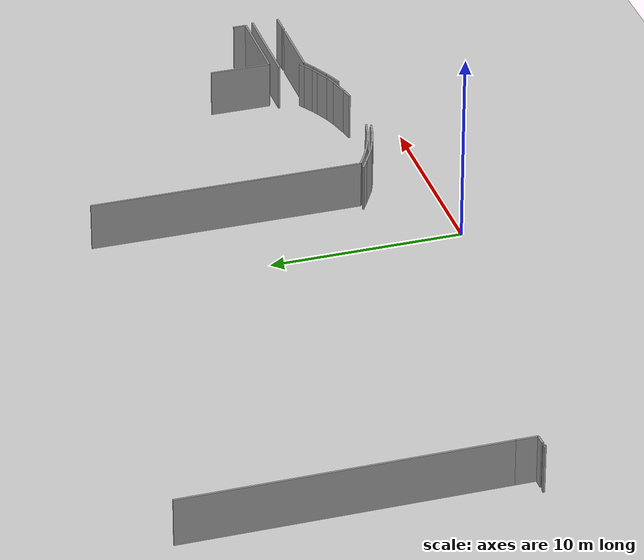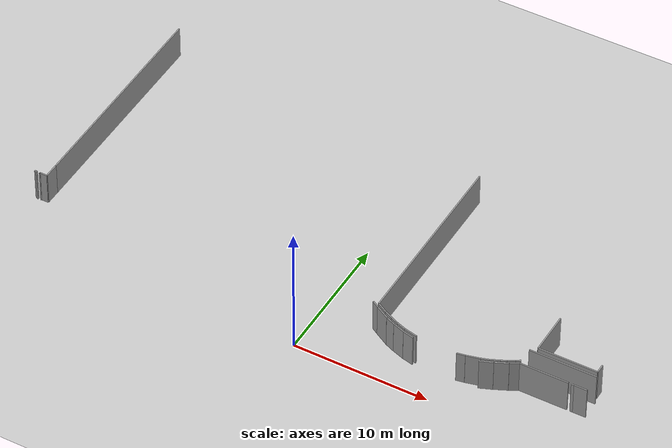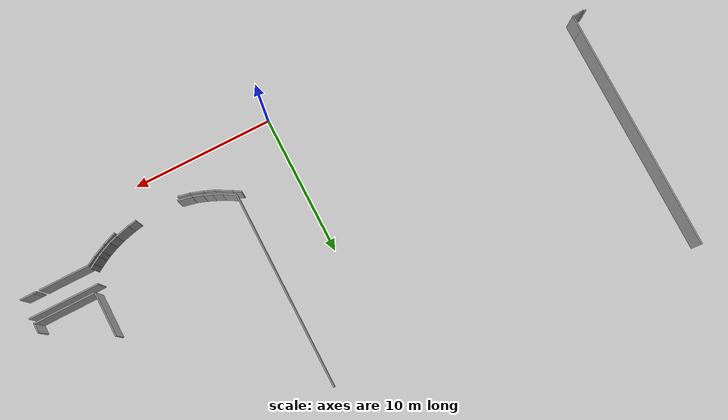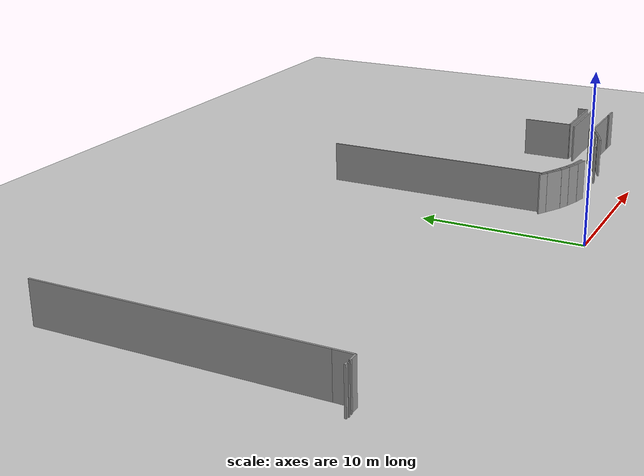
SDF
<sdf version="1.6">
 <world name="default">
  <model name="ground_plane">
   <static>1</static>
   <link name="link">
    <collision name="collision">
     <geometry><plane><normal>0 0 1</normal><size>100 100</size></plane></geometry>
     <surface><friction><ode><mu>100</mu><mu2>50</mu2></ode></friction></surface>
    </collision>
    <visual name="visual">
     <cast_shadows>0</cast_shadows>
     <geometry><plane><normal>0 0 1</normal><size>100 100</size></plane></geometry>
     <material>
      <script><uri>file://media/materials/scripts/gazebo.material</uri><name>Gazebo/Grey</name></script>
     </material>
    </visual>
   </link>
  </model>
  <model name="50041193">
   <static>1</static>
   <link name="Wall_40">
    <collision name="Wall_40_Collision">
     <geometry><box><size>0.19037452184 0.1 2.5</size></box></geometry>
     <pose>0.0951872609199 0 1.25 0 0 0</pose>
    </collision>
    <visual name="Wall_40_Visual">
     <pose>0.0951872609199 0 1.25 0 0 0</pose>
     <geometry><box><size>0.19037452184 0.1 2.5</size></box></geometry>
     <material>
      <script><uri>file://media/materials/scripts/gazebo.material</uri><name>Gazebo/Grey</name></script>
      <ambient>1 1 1 1</ambient>
     </material>
    </visual>
    <pose>9.37181491225 -49.4809180678 0 0 0 0.0</pose>
   </link>
   <link name="Wall_41">
    <collision name="Wall_41_Collision">
     <geometry><box><size>0.0955685183067 0.1 2.5</size></box></geometry>
     <pose>0.0477842591533 0 1.25 0 0 0</pose>
    </collision>
    <visual name="Wall_41_Visual">
     <pose>0.0477842591533 0 1.25 0 0 0</pose>
     <geometry><box><size>0.0955685183067 0.1 2.5</size></box></geometry>
     <material>
      <script><uri>file://media/materials/scripts/gazebo.material</uri><name>Gazebo/Grey</name></script>
      <ambient>1 1 1 1</ambient>
     </material>
    </visual>
    <pose>9.56218943409 -49.4809180678 0 0 0 -1.57079632679</pose>
   </link>
   <link name="Wall_88">
    <collision name="Wall_88_Collision">
     <geometry><box><size>16.2507148576 0.1 2.5</size></box></geometry>
     <pose>8.1253574288 0 1.25 0 0 0</pose>
    </collision>
    <visual name="Wall_88_Visual">
     <pose>8.1253574288 0 1.25 0 0 0</pose>
     <geometry><box><size>16.2507148576 0.1 2.5</size></box></geometry>
     <material>
      <script><uri>file://media/materials/scripts/gazebo.material</uri><name>Gazebo/Grey</name></script>
      <ambient>1 1 1 1</ambient>
     </material>
    </visual>
    <pose>10.3499942811 -48.3859468527 0 0 0 1.57079632679</pose>
   </link>
   <link name="Wall_94">
    <collision name="Wall_94_Collision">
     <geometry><box><size>0.585022312899 0.1 2.5</size></box></geometry>
     <pose>0.29251115645 0 1.25 0 0 0</pose>
    </collision>
    <visual name="Wall_94_Visual">
     <pose>0.29251115645 0 1.25 0 0 0</pose>
     <geometry><box><size>0.585022312899 0.1 2.5</size></box></geometry>
     <material>
      <script><uri>file://media/materials/scripts/gazebo.material</uri><name>Gazebo/Grey</name></script>
      <ambient>1 1 1 1</ambient>
     </material>
    </visual>
    <pose>35.4488034872 -49.0241717183 0 0 0 -0.540568520462</pose>
   </link>
   <link name="Wall_95">
    <collision name="Wall_95_Collision">
     <geometry><box><size>1.16623100503 0.1 2.5</size></box></geometry>
     <pose>0.583115502514 0 1.25 0 0 0</pose>
    </collision>
    <visual name="Wall_95_Visual">
     <pose>0.583115502514 0 1.25 0 0 0</pose>
     <geometry><box><size>1.16623100503 0.1 2.5</size></box></geometry>
     <material>
      <script><uri>file://media/materials/scripts/gazebo.material</uri><name>Gazebo/Grey</name></script>
      <ambient>1 1 1 1</ambient>
     </material>
    </visual>
    <pose>35.9504111225 -49.3252379682 0 0 0 -0.517524165273</pose>
   </link>
   <link name="Wall_96">
    <collision name="Wall_96_Collision">
     <geometry><box><size>0.73399220641 0.1 2.5</size></box></geometry>
     <pose>0.366996103205 0 1.25 0 0 0</pose>
    </collision>
    <visual name="Wall_96_Visual">
     <pose>0.366996103205 0 1.25 0 0 0</pose>
     <geometry><box><size>0.73399220641 0.1 2.5</size></box></geometry>
     <material>
      <script><uri>file://media/materials/scripts/gazebo.material</uri><name>Gazebo/Grey</name></script>
      <ambient>1 1 1 1</ambient>
     </material>
    </visual>
    <pose>36.9639203426 -49.9022074803 0 0 0 -0.385361332215</pose>
   </link>
   <link name="Wall_97">
    <collision name="Wall_97_Collision">
     <geometry><box><size>0.925213255805 0.1 2.5</size></box></geometry>
     <pose>0.462606627903 0 1.25 0 0 0</pose>
    </collision>
    <visual name="Wall_97_Visual">
     <pose>0.462606627903 0 1.25 0 0 0</pose>
     <geometry><box><size>0.925213255805 0.1 2.5</size></box></geometry>
     <material>
      <script><uri>file://media/materials/scripts/gazebo.material</uri><name>Gazebo/Grey</name></script>
      <ambient>1 1 1 1</ambient>
     </material>
    </visual>
    <pose>37.6440835208 -50.1781107426 0 0 0 -0.324617369582</pose>
   </link>
   <link name="Wall_98">
    <collision name="Wall_98_Collision">
     <geometry><box><size>0.830431840766 0.1 2.5</size></box></geometry>
     <pose>0.415215920383 0 1.25 0 0 0</pose>
    </collision>
    <visual name="Wall_98_Visual">
     <pose>0.415215920383 0 1.25 0 0 0</pose>
     <geometry><box><size>0.830431840766 0.1 2.5</size></box></geometry>
     <material>
      <script><uri>file://media/materials/scripts/gazebo.material</uri><name>Gazebo/Grey</name></script>
      <ambient>1 1 1 1</ambient>
     </material>
    </visual>
    <pose>38.5209755106 -50.47320396 0 0 0 -0.227532961251</pose>
   </link>
   <link name="Wall_103">
    <collision name="Wall_103_Collision">
     <geometry><box><size>0.978414532727 0.1 2.5</size></box></geometry>
     <pose>0.489207266363 0 1.25 0 0 0</pose>
    </collision>
    <visual name="Wall_103_Visual">
     <pose>0.489207266363 0 1.25 0 0 0</pose>
     <geometry><box><size>0.978414532727 0.1 2.5</size></box></geometry>
     <material>
      <script><uri>file://media/materials/scripts/gazebo.material</uri><name>Gazebo/Grey</name></script>
      <ambient>1 1 1 1</ambient>
     </material>
    </visual>
    <pose>44.0409470433 -50.3968253968 0 0 0 0.385788655101</pose>
   </link>
   <link name="Wall_104">
    <collision name="Wall_104_Collision">
     <geometry><box><size>1.00269060267 0.1 2.5</size></box></geometry>
     <pose>0.501345301334 0 1.25 0 0 0</pose>
    </collision>
    <visual name="Wall_104_Visual">
     <pose>0.501345301334 0 1.25 0 0 0</pose>
     <geometry><box><size>1.00269060267 0.1 2.5</size></box></geometry>
     <material>
      <script><uri>file://media/materials/scripts/gazebo.material</uri><name>Gazebo/Grey</name></script>
      <ambient>1 1 1 1</ambient>
     </material>
    </visual>
    <pose>44.9474500235 -50.0286578469 0 0 0 0.441596529087</pose>
   </link>
   <link name="Wall_105">
    <collision name="Wall_105_Collision">
     <geometry><box><size>0.67943109103 0.1 2.5</size></box></geometry>
     <pose>0.339715545515 0 1.25 0 0 0</pose>
    </collision>
    <visual name="Wall_105_Visual">
     <pose>0.339715545515 0 1.25 0 0 0</pose>
     <geometry><box><size>0.67943109103 0.1 2.5</size></box></geometry>
     <material>
      <script><uri>file://media/materials/scripts/gazebo.material</uri><name>Gazebo/Grey</name></script>
      <ambient>1 1 1 1</ambient>
     </material>
    </visual>
    <pose>45.8539530037 -49.6001245441 0 0 0 0.525085443971</pose>
   </link>
   <link name="Wall_106">
    <collision name="Wall_106_Collision">
     <geometry><box><size>3.54696455577 0.1 2.5</size></box></geometry>
     <pose>1.77348227789 0 1.25 0 0 0</pose>
    </collision>
    <visual name="Wall_106_Visual">
     <pose>1.77348227789 0 1.25 0 0 0</pose>
     <geometry><box><size>3.54696455577 0.1 2.5</size></box></geometry>
     <material>
      <script><uri>file://media/materials/scripts/gazebo.material</uri><name>Gazebo/Grey</name></script>
      <ambient>1 1 1 1</ambient>
     </material>
    </visual>
    <pose>46.4418518942 -49.2595346118 0 0 0 0.0</pose>
   </link>
   <link name="Wall_110">
    <collision name="Wall_110_Collision">
     <geometry><box><size>0.07370976146 0.1 2.5</size></box></geometry>
     <pose>0.03685488073 0 1.25 0 0 0</pose>
    </collision>
    <visual name="Wall_110_Visual">
     <pose>0.03685488073 0 1.25 0 0 0</pose>
     <geometry><box><size>0.07370976146 0.1 2.5</size></box></geometry>
     <material>
      <script><uri>file://media/materials/scripts/gazebo.material</uri><name>Gazebo/Grey</name></script>
      <ambient>1 1 1 1</ambient>
     </material>
    </visual>
    <pose>9.80339827417 -49.5580591457 0 0 0 1.57079632679</pose>
   </link>
   <link name="Wall_111">
    <collision name="Wall_111_Collision">
     <geometry><box><size>0.543673033665 0.1 2.5</size></box></geometry>
     <pose>0.271836516833 0 1.25 0 0 0</pose>
    </collision>
    <visual name="Wall_111_Visual">
     <pose>0.271836516833 0 1.25 0 0 0</pose>
     <geometry><box><size>0.543673033665 0.1 2.5</size></box></geometry>
     <material>
      <script><uri>file://media/materials/scripts/gazebo.material</uri><name>Gazebo/Grey</name></script>
      <ambient>1 1 1 1</ambient>
     </material>
    </visual>
    <pose>9.80339827417 -49.4843493843 0 0 0 0.0</pose>
   </link>
   <link name="Wall_112">
    <collision name="Wall_112_Collision">
     <geometry><box><size>1.09840642072 0.1 2.5</size></box></geometry>
     <pose>0.549203210362 0 1.25 0 0 0</pose>
    </collision>
    <visual name="Wall_112_Visual">
     <pose>0.549203210362 0 1.25 0 0 0</pose>
     <geometry><box><size>1.09840642072 0.1 2.5</size></box></geometry>
     <material>
      <script><uri>file://media/materials/scripts/gazebo.material</uri><name>Gazebo/Grey</name></script>
      <ambient>1 1 1 1</ambient>
     </material>
    </visual>
    <pose>10.3470713078 -49.4843493843 0 0 0 1.56813522004</pose>
   </link>
   <link name="Wall_159">
    <collision name="Wall_159_Collision">
     <geometry><box><size>14.0389136706 0.1 2.5</size></box></geometry>
     <pose>7.01945683531 0 1.25 0 0 0</pose>
    </collision>
    <visual name="Wall_159_Visual">
     <pose>7.01945683531 0 1.25 0 0 0</pose>
     <geometry><box><size>14.0389136706 0.1 2.5</size></box></geometry>
     <material>
      <script><uri>file://media/materials/scripts/gazebo.material</uri><name>Gazebo/Grey</name></script>
      <ambient>1 1 1 1</ambient>
     </material>
    </visual>
    <pose>35.8492508292 -49.0138777689 0 0 0 1.57079632679</pose>
   </link>
   <link name="Wall_201">
    <collision name="Wall_201_Collision">
     <geometry><box><size>4.93715607407 0.1 2.5</size></box></geometry>
     <pose>2.46857803703 0 1.25 0 0 0</pose>
    </collision>
    <visual name="Wall_201_Visual">
     <pose>2.46857803703 0 1.25 0 0 0</pose>
     <geometry><box><size>4.93715607407 0.1 2.5</size></box></geometry>
     <material>
      <script><uri>file://media/materials/scripts/gazebo.material</uri><name>Gazebo/Grey</name></script>
      <ambient>1 1 1 1</ambient>
     </material>
    </visual>
    <pose>46.4088095874 -47.8802724719 0 0 0 0.0</pose>
   </link>
   <link name="Wall_204">
    <collision name="Wall_204_Collision">
     <geometry><box><size>0.355058813339 0.1 2.5</size></box></geometry>
     <pose>0.177529406669 0 1.25 0 0 0</pose>
    </collision>
    <visual name="Wall_204_Visual">
     <pose>0.177529406669 0 1.25 0 0 0</pose>
     <geometry><box><size>0.355058813339 0.1 2.5</size></box></geometry>
     <material>
      <script><uri>file://media/materials/scripts/gazebo.material</uri><name>Gazebo/Grey</name></script>
      <ambient>1 1 1 1</ambient>
     </material>
    </visual>
    <pose>46.3997864959 -49.0018046183 0 0 0 -2.58625621698</pose>
   </link>
   <link name="Wall_205">
    <collision name="Wall_205_Collision">
     <geometry><box><size>0.566196301564 0.1 2.5</size></box></geometry>
     <pose>0.283098150782 0 1.25 0 0 0</pose>
    </collision>
    <visual name="Wall_205_Visual">
     <pose>0.283098150782 0 1.25 0 0 0</pose>
     <geometry><box><size>0.566196301564 0.1 2.5</size></box></geometry>
     <material>
      <script><uri>file://media/materials/scripts/gazebo.material</uri><name>Gazebo/Grey</name></script>
      <ambient>1 1 1 1</ambient>
     </material>
    </visual>
    <pose>46.0980848171 -49.1890019952 0 0 0 -2.61426141115</pose>
   </link>
   <link name="Wall_206">
    <collision name="Wall_206_Collision">
     <geometry><box><size>0.397343165138 0.1 2.5</size></box></geometry>
     <pose>0.198671582569 0 1.25 0 0 0</pose>
    </collision>
    <visual name="Wall_206_Visual">
     <pose>0.198671582569 0 1.25 0 0 0</pose>
     <geometry><box><size>0.397343165138 0.1 2.5</size></box></geometry>
     <material>
      <script><uri>file://media/materials/scripts/gazebo.material</uri><name>Gazebo/Grey</name></script>
      <ambient>1 1 1 1</ambient>
     </material>
    </visual>
    <pose>45.6088045039 -49.473928349 0 0 0 -2.66979188524</pose>
   </link>
   <link name="Wall_207">
    <collision name="Wall_207_Collision">
     <geometry><box><size>0.744396225557 0.1 2.5</size></box></geometry>
     <pose>0.372198112779 0 1.25 0 0 0</pose>
    </collision>
    <visual name="Wall_207_Visual">
     <pose>0.372198112779 0 1.25 0 0 0</pose>
     <geometry><box><size>0.744396225557 0.1 2.5</size></box></geometry>
     <material>
      <script><uri>file://media/materials/scripts/gazebo.material</uri><name>Gazebo/Grey</name></script>
      <ambient>1 1 1 1</ambient>
     </material>
    </visual>
    <pose>45.2548705631 -49.6545172646 0 0 0 -2.72354166728</pose>
   </link>
   <link name="Wall_208">
    <collision name="Wall_208_Collision">
     <geometry><box><size>0.567262435624 0.1 2.5</size></box></geometry>
     <pose>0.283631217812 0 1.25 0 0 0</pose>
    </collision>
    <visual name="Wall_208_Visual">
     <pose>0.283631217812 0 1.25 0 0 0</pose>
     <geometry><box><size>0.567262435624 0.1 2.5</size></box></geometry>
     <material>
      <script><uri>file://media/materials/scripts/gazebo.material</uri><name>Gazebo/Grey</name></script>
      <ambient>1 1 1 1</ambient>
     </material>
    </visual>
    <pose>44.5745802992 -49.9567272866 0 0 0 -2.81452865292</pose>
   </link>
   <link name="Wall_209">
    <collision name="Wall_209_Collision">
     <geometry><box><size>1.02301719491 0.1 2.5</size></box></geometry>
     <pose>0.511508597456 0 1.25 0 0 0</pose>
    </collision>
    <visual name="Wall_209_Visual">
     <pose>0.511508597456 0 1.25 0 0 0</pose>
     <geometry><box><size>1.02301719491 0.1 2.5</size></box></geometry>
     <material>
      <script><uri>file://media/materials/scripts/gazebo.material</uri><name>Gazebo/Grey</name></script>
      <ambient>1 1 1 1</ambient>
     </material>
    </visual>
    <pose>44.0373886411 -50.1389683175 0 0 0 -2.89281768451</pose>
   </link>
   <link name="Wall_210">
    <collision name="Wall_210_Collision">
     <geometry><box><size>0.612379334029 0.1 2.5</size></box></geometry>
     <pose>0.306189667014 0 1.25 0 0 0</pose>
    </collision>
    <visual name="Wall_210_Visual">
     <pose>0.306189667014 0 1.25 0 0 0</pose>
     <geometry><box><size>0.612379334029 0.1 2.5</size></box></geometry>
     <material>
      <script><uri>file://media/materials/scripts/gazebo.material</uri><name>Gazebo/Grey</name></script>
      <ambient>1 1 1 1</ambient>
     </material>
    </visual>
    <pose>43.0458652636 -50.3908523644 0 0 0 -2.97016633773</pose>
   </link>
   <link name="Wall_214">
    <collision name="Wall_214_Collision">
     <geometry><box><size>1.00930771596 0.1 2.5</size></box></geometry>
     <pose>0.504653857978 0 1.25 0 0 0</pose>
    </collision>
    <visual name="Wall_214_Visual">
     <pose>0.504653857978 0 1.25 0 0 0</pose>
     <geometry><box><size>1.00930771596 0.1 2.5</size></box></geometry>
     <material>
      <script><uri>file://media/materials/scripts/gazebo.material</uri><name>Gazebo/Grey</name></script>
      <ambient>1 1 1 1</ambient>
     </material>
    </visual>
    <pose>39.4541665078 -50.4373657656 0 0 0 2.92831835628</pose>
   </link>
   <link name="Wall_215">
    <collision name="Wall_215_Collision">
     <geometry><box><size>0.711332484388 0.1 2.5</size></box></geometry>
     <pose>0.355666242194 0 1.25 0 0 0</pose>
    </collision>
    <visual name="Wall_215_Visual">
     <pose>0.355666242194 0 1.25 0 0 0</pose>
     <geometry><box><size>0.711332484388 0.1 2.5</size></box></geometry>
     <material>
      <script><uri>file://media/materials/scripts/gazebo.material</uri><name>Gazebo/Grey</name></script>
      <ambient>1 1 1 1</ambient>
     </material>
    </visual>
    <pose>38.4677265622 -50.2237345432 0 0 0 2.80871198646</pose>
   </link>
   <link name="Wall_216">
    <collision name="Wall_216_Collision">
     <geometry><box><size>0.622048101907 0.1 2.5</size></box></geometry>
     <pose>0.311024050953 0 1.25 0 0 0</pose>
    </collision>
    <visual name="Wall_216_Visual">
     <pose>0.311024050953 0 1.25 0 0 0</pose>
     <geometry><box><size>0.622048101907 0.1 2.5</size></box></geometry>
     <material>
      <script><uri>file://media/materials/scripts/gazebo.material</uri><name>Gazebo/Grey</name></script>
      <ambient>1 1 1 1</ambient>
     </material>
    </visual>
    <pose>37.7954427034 -49.991294623 0 0 0 2.7367276935</pose>
   </link>
   <link name="Wall_217">
    <collision name="Wall_217_Collision">
     <geometry><box><size>0.65889052151 0.1 2.5</size></box></geometry>
     <pose>0.329445260755 0 1.25 0 0 0</pose>
    </collision>
    <visual name="Wall_217_Visual">
     <pose>0.329445260755 0 1.25 0 0 0</pose>
     <geometry><box><size>0.65889052151 0.1 2.5</size></box></geometry>
     <material>
      <script><uri>file://media/materials/scripts/gazebo.material</uri><name>Gazebo/Grey</name></script>
      <ambient>1 1 1 1</ambient>
     </material>
    </visual>
    <pose>37.2236837089 -49.746273209 0 0 0 2.7012367765</pose>
   </link>
   <link name="Wall_218">
    <collision name="Wall_218_Collision">
     <geometry><box><size>0.899884405353 0.1 2.5</size></box></geometry>
     <pose>0.449942202676 0 1.25 0 0 0</pose>
    </collision>
    <visual name="Wall_218_Visual">
     <pose>0.449942202676 0 1.25 0 0 0</pose>
     <geometry><box><size>0.899884405353 0.1 2.5</size></box></geometry>
     <material>
      <script><uri>file://media/materials/scripts/gazebo.material</uri><name>Gazebo/Grey</name></script>
      <ambient>1 1 1 1</ambient>
     </material>
    </visual>
    <pose>36.6276513274 -49.4654136007 0 0 0 2.61594777821</pose>
   </link>
   <link name="Wall_280">
    <collision name="Wall_280_Collision">
     <geometry><box><size>3.15083813082 0.1 2.5</size></box></geometry>
     <pose>1.57541906541 0 1.25 0 0 0</pose>
    </collision>
    <visual name="Wall_280_Visual">
     <pose>1.57541906541 0 1.25 0 0 0</pose>
     <geometry><box><size>3.15083813082 0.1 2.5</size></box></geometry>
     <material>
      <script><uri>file://media/materials/scripts/gazebo.material</uri><name>Gazebo/Grey</name></script>
      <ambient>1 1 1 1</ambient>
     </material>
    </visual>
    <pose>46.8415367214 -47.4655915208 0 0 0 1.57079632679</pose>
   </link>
   <link name="Wall_283">
    <collision name="Wall_283_Collision">
     <geometry><box><size>0.677621462249 0.1 2.5</size></box></geometry>
     <pose>0.338810731125 0 1.25 0 0 0</pose>
    </collision>
    <visual name="Wall_283_Visual">
     <pose>0.338810731125 0 1.25 0 0 0</pose>
     <geometry><box><size>0.677621462249 0.1 2.5</size></box></geometry>
     <material>
      <script><uri>file://media/materials/scripts/gazebo.material</uri><name>Gazebo/Grey</name></script>
      <ambient>1 1 1 1</ambient>
     </material>
    </visual>
    <pose>51.1793561834 -46.7849199995 0 0 0 -1.57079632679</pose>
   </link>
   <link name="Wall_284">
    <collision name="Wall_284_Collision">
     <geometry><box><size>4.33782053422 0.1 2.5</size></box></geometry>
     <pose>2.16891026711 0 1.25 0 0 0</pose>
    </collision>
    <visual name="Wall_284_Visual">
     <pose>2.16891026711 0 1.25 0 0 0</pose>
     <geometry><box><size>4.33782053422 0.1 2.5</size></box></geometry>
     <material>
      <script><uri>file://media/materials/scripts/gazebo.material</uri><name>Gazebo/Grey</name></script>
      <ambient>1 1 1 1</ambient>
     </material>
    </visual>
    <pose>51.1793561834 -47.4625414617 0 0 0 -3.14088952184</pose>
   </link>
   <link name="Wall_327">
    <collision name="Wall_327_Collision">
     <geometry><box><size>0.950728837038 0.1 2.5</size></box></geometry>
     <pose>0.475364418519 0 1.25 0 0 0</pose>
    </collision>
    <visual name="Wall_327_Visual">
     <pose>0.475364418519 0 1.25 0 0 0</pose>
     <geometry><box><size>0.950728837038 0.1 2.5</size></box></geometry>
     <material>
      <script><uri>file://media/materials/scripts/gazebo.material</uri><name>Gazebo/Grey</name></script>
      <ambient>1 1 1 1</ambient>
     </material>
    </visual>
    <pose>50.3980327119 -49.2582637539 0 0 0 0.0</pose>
   </link>
   <link name="Wall_331">
    <collision name="Wall_331_Collision">
     <geometry><box><size>0.206771752926 0.1 2.5</size></box></geometry>
     <pose>0.103385876463 0 1.25 0 0 0</pose>
    </collision>
    <visual name="Wall_331_Visual">
     <pose>0.103385876463 0 1.25 0 0 0</pose>
     <geometry><box><size>0.206771752926 0.1 2.5</size></box></geometry>
     <material>
      <script><uri>file://media/materials/scripts/gazebo.material</uri><name>Gazebo/Grey</name></script>
      <ambient>1 1 1 1</ambient>
     </material>
    </visual>
    <pose>50.1912641224 -49.259407526 0 0 0 0.00553159692937</pose>
   </link>
   <pose>-31.7 53.0309199741 0 0 0 0</pose>
  </model>
 </world>
</sdf>
